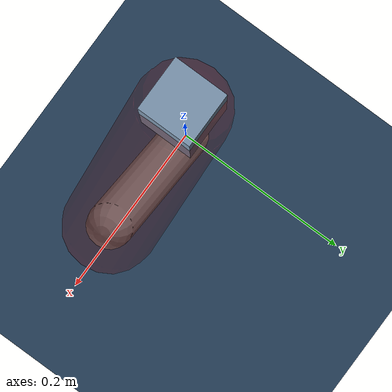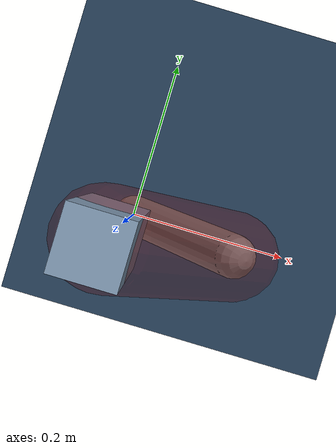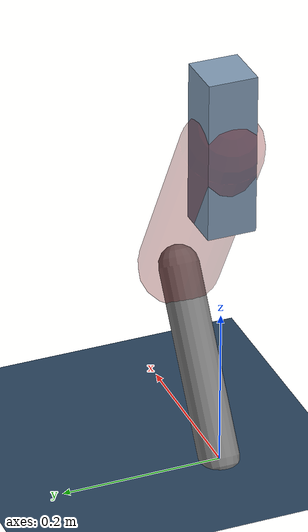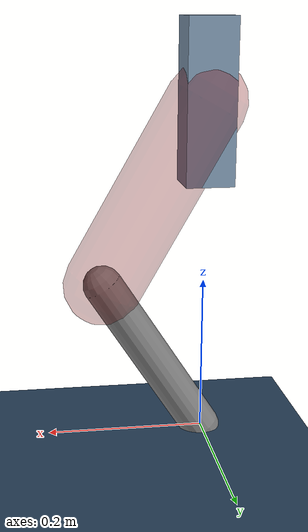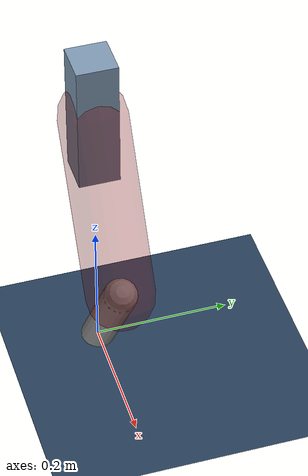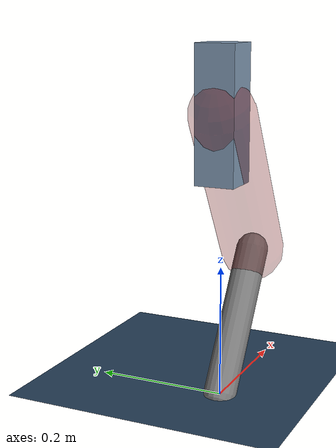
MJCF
<mujoco model="Hopper2D">
	<compiler inertiafromgeom="true" angle="radian" />
	<option timestep="0.001" integrator="implicit" cone="elliptic" solver="Newton" tolerance="1e-10" />

	<default>
		<geom contype="1" conaffinity="1" condim="3" friction="2 0.005 0.0001" solref="0.005 1" />
		<joint limited="true" damping="0.1" />
	</default>

	<asset>
		<texture name="skybox" type="skybox" builtin="gradient" rgb1=".4 .6 .8" rgb2="0 0 0" width="800" height="800" />
		<texture name="grid" type="2d" builtin="checker" rgb1=".1 .2 .3" rgb2=".2 .3 .4" width="300" height="300" mark="edge" markrgb=".2 .3 .4" />
		<material name="ground" texture="grid" texrepeat="1 1" texuniform="true" reflectance="0.1" />
		<material name="leg" rgba="0.5 0.6 0.7 1" />
	</asset>

	<worldbody>

		<geom name="floor" type="plane" size="5 5 0.25" material="ground" />

		<light directional="false" diffuse="0.8 0.8 0.8" specular="0.3 0.3 0.3" pos="0 0 2" dir="0 0 -1" />
		<light mode="targetbodycom" target="base" directional="false" diffuse="0.8 0.8 0.8" specular="0.3 0.3 0.3" pos="0 0 2" dir="0 0 -1" />

		<camera name="fixed" pos="0 -2 1" xyaxes="1 0 0 0 0 1" />
		<camera name="tracking" mode="trackcom" pos="0 -3 1" />

		<body name="root" pos="0 0 0.4253311408804481">
			<joint name="slide_x" type="slide" axis="1 0 0" range="-100 100" />
			<joint name="slide_z" type="slide" axis="0 0 1" range="0 10" />

			<body name="base" pos="0 0 0">
				<geom name="torso" type="box" size="0.03 0.03 0.1" mass="2.872" material="leg" />

				<body name="link1" pos="0 0 0" euler="0 1.0555137453188417 0">
					<joint type="hinge" axis="0 -1 0" pos="0 0 0" name="hinge1" limited="true" range="-3.14 3.14" stiffness="0" damping="0.1" />
					<geom name="thigh" type="capsule" fromto="0 0 0 0.2605670100004257 0 0" size="0.05" rgba="0.5 0 0 0.3" mass="0.8838742260011068" />

					<body name="link2" pos="0.2605670100004257 0 0" euler="0 1.0892250229931428 0">
						<joint type="hinge" axis="0 -1 0" pos="0 0 0" name="hinge2" limited="true" range="-3.14 3.14" stiffness="0" damping="0.1" />
						<geom name="shank" type="capsule" fromto="0 0 0 0.23649161084134357 0 0" size="0.025" mass="0.43139328867307486" />

					</body>
				</body>
			</body>
		</body>
	</worldbody>

	<actuator>
		<motor name="torque1" joint="hinge1" ctrlrange="-105.82522788522382 105.82522788522382" ctrllimited="true" gear="1" />
		<motor name="torque2" joint="hinge2" ctrlrange="-78.74706021643605 78.74706021643605" ctrllimited="true" gear="1" />
	</actuator>
</mujoco>
